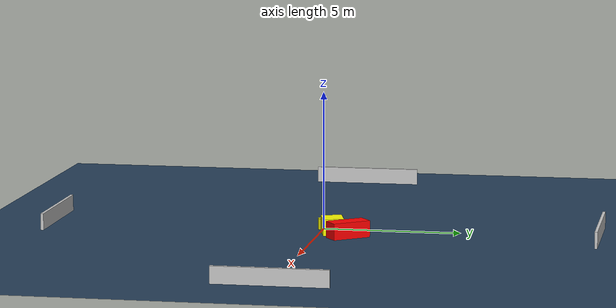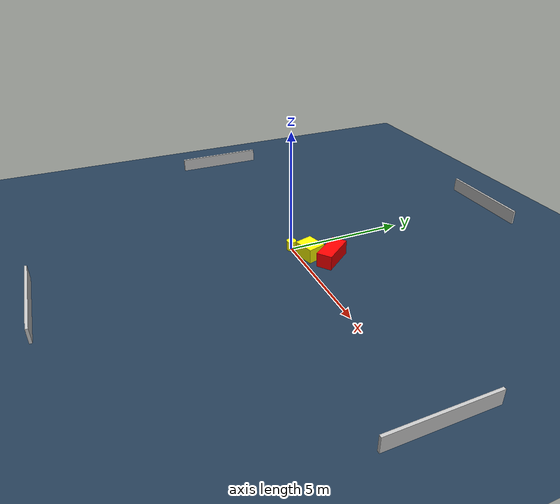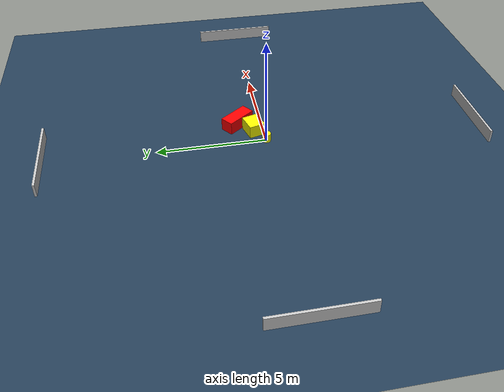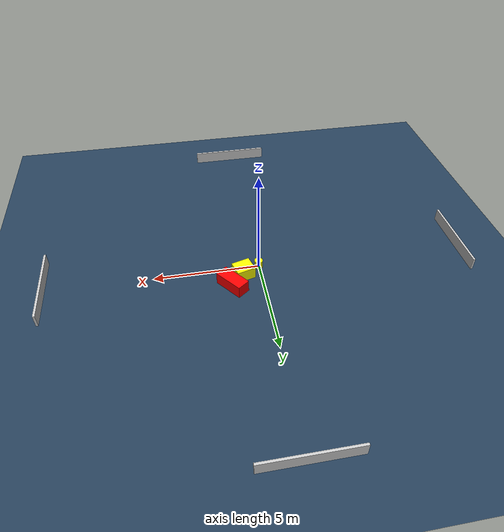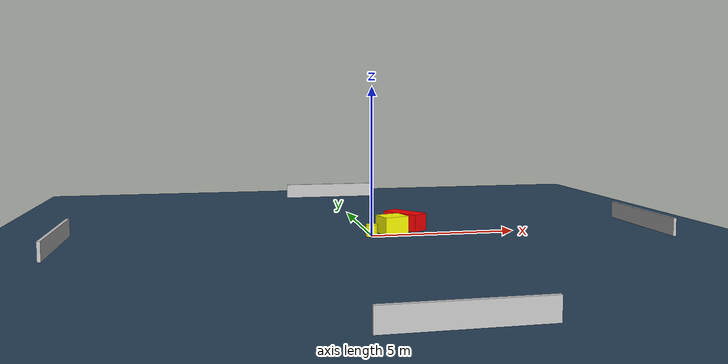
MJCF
<?xml version="1.0" ?>
<mujoco model="generated_environment">
  <option timestep="0.01" integrator="RK4" cone="elliptic"/>
  <default>
    <geom density="1"/>
  </default>
  <asset>
    <texture builtin="gradient" height="3072" name="skybox" rgb1="0.3 0.5 0.7" rgb2="0 0 0" type="skybox" width="512"/>
    <texture builtin="checker" height="300" name="groundplane" rgb1="0.2 0.3 0.4" rgb2="0.1 0.2 0.3" type="2d" width="300"/>
    <material name="groundplane" reflectance="0.2" texrepeat="5 5" texture="groundplane"/>
  </asset>
  <worldbody>
    <light dir="0 0 -1" directional="true" pos="0 0 1.5"/>
    <geom condim="3" friction="0.5 0.005 0.001" material="groundplane" name="floor" pos="0 0 0" size="0 0 0.05" type="plane"/>
    <body name="walls">
      <geom name="wall_1" condim="4" pos="-10.0 0.0 0.3" rgba="0.800000011920929 0.800000011920929 0.800000011920929 1.0" size="0.05 2.0 0.3" type="box"/>
      <geom name="wall_2" condim="4" pos="10.0 0.0 0.3" rgba="0.800000011920929 0.800000011920929 0.800000011920929 1.0" size="0.05 2.0 0.3" type="box"/>
      <geom name="wall_3" condim="4" pos="0.0 -10.0 0.3" rgba="0.800000011920929 0.800000011920929 0.800000011920929 1.0" size="2.0 0.05 0.3" type="box"/>
      <geom name="wall_4" condim="4" pos="0.0 10.0 0.3" rgba="0.800000011920929 0.800000011920929 0.800000011920929 1.0" size="2.0 0.05 0.3" type="box"/>
    </body>
    <body name="robot">
      <joint name="joint_x" type="slide" pos="0 0 0" axis="1 0 0"/>
      <joint name="joint_y" type="slide" pos="0 0 0" axis="0 1 0"/>
      <geom name="robot" type="cylinder" pos="0.0 0.0 0.2" size="0.2 0.2 0.0" mass="5.0" friction="1.0 0.005 0.0001" condim="4" rgba="1.0 1.0 0.0 1.0"/>
    </body>
    <body name="obstacle_1_movable">
      <geom name="obstacle_1_movable" condim="4" pos="0.8064247606021085 0.4638364414156407 0.3" euler="0 0 15.845954104603091" friction="0.0 0.005 0.001" rgba="1.0 1.0 0.0 1.0" size="0.439515773540711 0.37544783137149074 0.3" type="box" mass="0.1"/>
      <joint type="free"/>
    </body>
    <body name="obstacle_2_static">
      <geom name="obstacle_2_static" condim="4" pos="1.4187818065107078 1.1337991395681013 0.3" euler="0 0 37.48949816466871" friction="0.0 0.005 0.001" rgba="1.0 0.0 0.0 1.0" size="0.314518391745054 0.7195804741130709 0.3" type="box"/>
    </body>
  </worldbody>
  <actuator>
    <motor name="actuator_x" joint="joint_x" gear="1" ctrlrange="-1 1"/>
    <motor name="actuator_y" joint="joint_y" gear="1" ctrlrange="-1 1"/>
  </actuator>
</mujoco>
